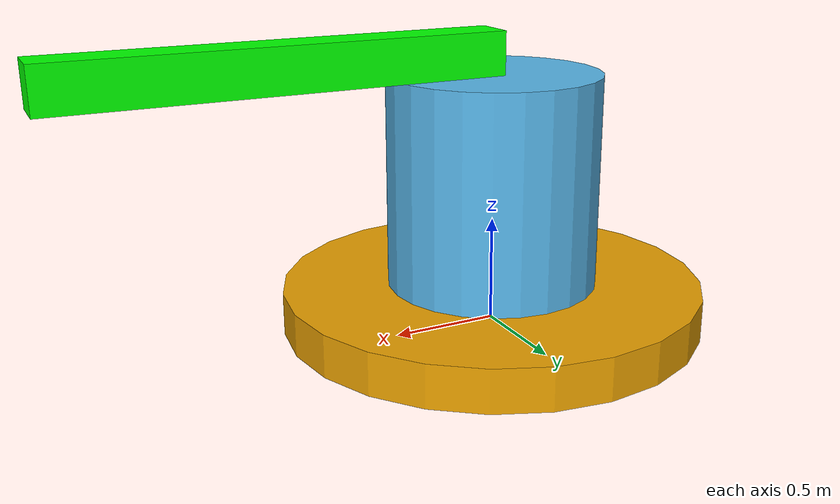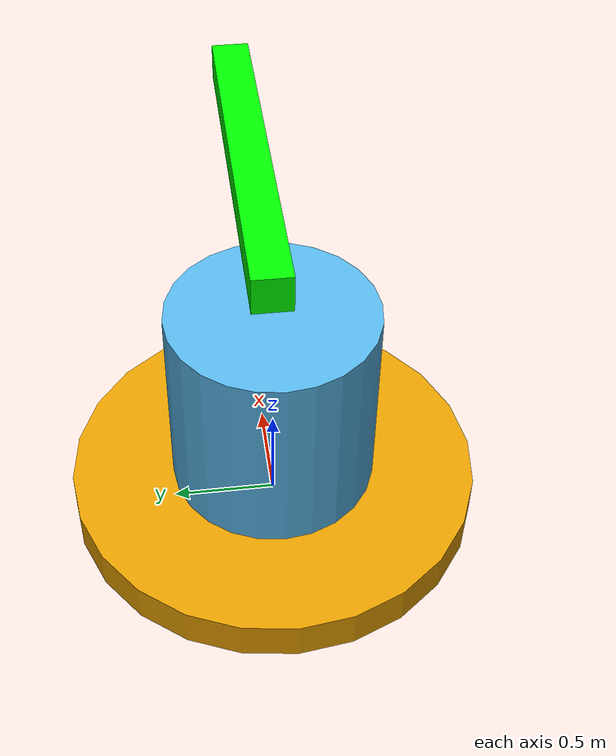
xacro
<?xml version="1.0"?>
<robot name="robotic_arm" xmlns:xacro="http://ros.org/wiki/xacro">
    <material name="Cyan">
        <color rgba="0 1 0 0"/>
      </material>
    <xacro:macro name="default_inertial" params="mass">
    <inertial>
      <mass value="${mass}" />
      <inertia ixx="1.0" ixy="0.0" ixz="0.0" iyy="1.0" iyz="0.0" izz="1.0" />
    </inertial>
  </xacro:macro>
  <link name = "base_link">
    <visual>
        <origin xyz="0 0 0.1" rpy="0 0 0"/>
      <geometry>
        <cylinder radius="1" length=".2"/>
      </geometry>
    </visual>
    <collision>
      <origin xyz="0 0 0.1" rpy="0 0 0"/>
      <geometry>
        <cylinder radius="1" length=".2"/>
      </geometry>
    </collision>
    <xacro:default_inertial mass="10"/>
  </link>

  <link name = "link_shoulder">
    <visual>
      <origin xyz="0 0 0.5" rpy="0 0 0"/>
      <geometry>
        <cylinder radius="0.5" length="1.0"/>
      </geometry>
    </visual>
    <collision>
      <origin xyz="0 0 0.5" rpy="0 0 0"/>
      <geometry>
        <cylinder radius="0.5" length="1.0"/>
      </geometry>
    </collision>
    <xacro:default_inertial mass="10"/>
  </link>
  <joint name="joint_base_shoulder" type="continuous">
    <axis xyz="0 0 1" rpy="0 0 0"/>
    <parent link="base_link"/>
    <child link="link_shoulder"/>
    <origin xyz="0 0 0.2" rpy="0 0 0"/>
  </joint>

  <transmission name="trans_base_shoulder">
    <type>transmission_interface/SimpleTransmission</type>
    <actuator name="base_shoulder_motor">
      <mechanicalReduction>1</mechanicalReduction>
    </actuator>
    <joint name="joint_base_shoulder">
      <hardwareInterface>hardware_interface/PositionJointInterface</hardwareInterface>
    </joint>
  </transmission>

  <link name="link_arm">
    <visual>
        <origin xyz="1.0 0 0.1" rpy="0 0 0"/>
      <geometry>
        <box size="2 .2 .2"/>
      </geometry>
      <material name="Cyan"/>
    </visual>
    <collision>
      <origin xyz="1 0 0.1" rpy="0 0 0"/>
      <geometry>
        <box size="2 .2 .2"/>
      </geometry>
    </collision>
    <xacro:default_inertial mass="10"/>
  </link>
  <joint name="joint_shoulder_arm" type="prismatic">
      <limit effort="100.0" lower="-1.5" upper="0.5" velocity="0.8"/>
    <axis xyz="1 0 0" rpy="0 0 0"/>
    <parent link="link_shoulder"/>
    <child link="link_arm"/>
    <origin xyz="0 0 1.0" rpy="0 0 0"/>
  </joint>
  <transmission name="trans_shoulder_arm">
    <type>transmission_interface/SimpleTransmission</type>
    <actuator name="shoulder_arm_motor">
      <mechanicalReduction>1</mechanicalReduction>
    </actuator>
    <joint name="joint_shoulder_arm">
      <hardwareInterface>hardware_interface/PositionJointInterface</hardwareInterface>
    </joint>
  </transmission>

  <gazebo>
    <plugin name="gazebo_ros_control" filename="libgazebo_ros_control.so">
      <robotNamespace>/</robotNamespace>
    </plugin>
  </gazebo>
</robot>
